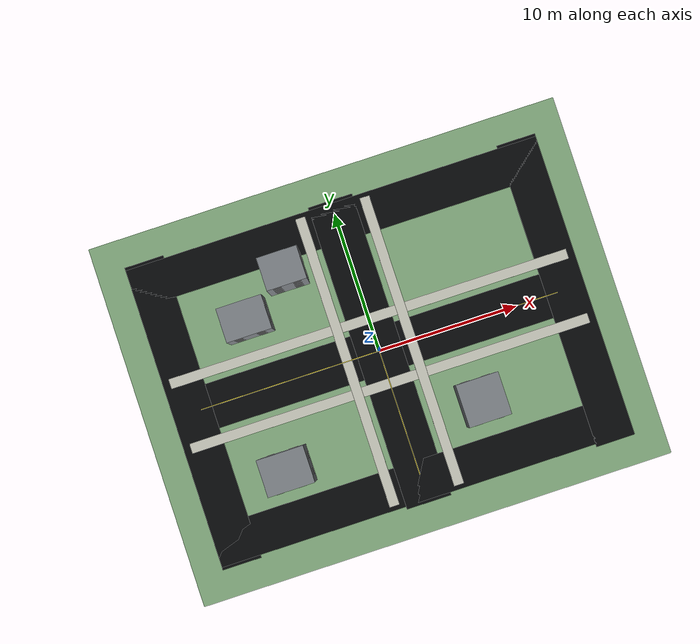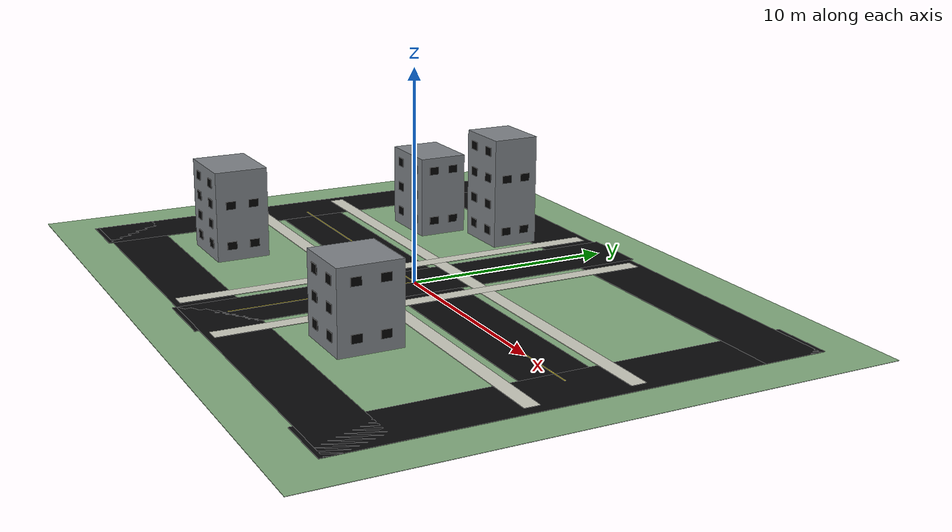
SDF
<sdf version="1.10">
 <world name="city_apm_rgbd">
  <physics name="apm_1ms_physics" type="ignored">
   <max_step_size>0.001</max_step_size>
   <real_time_factor>1.0</real_time_factor>
  </physics>
  <plugin filename="gz-sim-physics-system" name="gz::sim::systems::Physics"/>
  <plugin filename="gz-sim-sensors-system" name="gz::sim::systems::Sensors">
   <render_engine>ogre2</render_engine>
  </plugin>
  <plugin filename="gz-sim-user-commands-system" name="gz::sim::systems::UserCommands"/>
  <plugin filename="gz-sim-scene-broadcaster-system" name="gz::sim::systems::SceneBroadcaster"/>
  <plugin filename="gz-sim-imu-system" name="gz::sim::systems::Imu"/>
  <plugin filename="gz-sim-navsat-system" name="gz::sim::systems::NavSat"/>
  <scene>
   <ambient>0.98 0.98 0.96 1</ambient>
   <background>0.82 0.90 1.0 1</background>
   <shadows>false</shadows>
  </scene>
  <spherical_coordinates>
   <latitude_deg>-35.363262</latitude_deg>
   <longitude_deg>149.165237</longitude_deg>
   <elevation>584</elevation>
   <heading_deg>0</heading_deg>
   <surface_model>EARTH_WGS84</surface_model>
  </spherical_coordinates>
  <light name="sun" type="directional">
   <pose>0 0 24 0.45 0.25 0</pose>
   <diffuse>1.0 1.0 0.95 1</diffuse>
   <specular>0.55 0.55 0.50 1</specular>
   <direction>-0.25 0.18 -0.95</direction>
  </light>
  <model name="visual_ground">
   <static>true</static>
   <link name="link">
    <collision name="ground_collision">
     <pose>0 0 -0.01 0 0 0</pose>
     <geometry><box><size>34 26 0.02</size></box></geometry>
     <surface><friction><ode><mu>0.4</mu><mu2>0.4</mu2></ode></friction></surface>
    </collision>
    <visual name="ground_visual">
     <geometry><box><size>34 26 0.02</size></box></geometry>
     <pose>0 0 -0.01 0 0 0</pose>
     <material><diffuse>0.52 0.68 0.50 1</diffuse></material>
    </visual>
   </link>
  </model>
  <model name="visual_city_block">
   <static>true</static>
   <link name="link">
    <visual name="road_main">
     <pose>0 0 0.005 0 0 0</pose>
     <geometry><box><size>30 3.2 0.03</size></box></geometry>
     <material><diffuse>0.035 0.038 0.042 1</diffuse></material>
    </visual>
    <visual name="road_cross">
     <pose>0 0 0.006 0 0 0</pose>
     <geometry><box><size>3.2 22 0.035</size></box></geometry>
     <material><diffuse>0.035 0.038 0.042 1</diffuse></material>
    </visual>
    <visual name="road_outer_top">
     <pose>0 9.4 0.006 0 0 0</pose>
     <geometry><box><size>30 2.8 0.035</size></box></geometry>
     <material><diffuse>0.035 0.038 0.042 1</diffuse></material>
    </visual>
    <visual name="road_outer_bottom">
     <pose>0 -9.4 0.006 0 0 0</pose>
     <geometry><box><size>30 2.8 0.035</size></box></geometry>
     <material><diffuse>0.035 0.038 0.042 1</diffuse></material>
    </visual>
    <visual name="road_outer_left">
     <pose>-13.6 0 0.006 0 0 0</pose>
     <geometry><box><size>2.8 22 0.035</size></box></geometry>
     <material><diffuse>0.035 0.038 0.042 1</diffuse></material>
    </visual>
    <visual name="road_outer_right">
     <pose>13.6 0 0.006 0 0 0</pose>
     <geometry><box><size>2.8 22 0.035</size></box></geometry>
     <material><diffuse>0.035 0.038 0.042 1</diffuse></material>
    </visual>
    <visual name="lane_main">
     <pose>0 0 0.04 0 0 0</pose>
     <geometry><box><size>26 0.055 0.01</size></box></geometry>
     <material><diffuse>0.92 0.84 0.2 1</diffuse></material>
    </visual>
    <visual name="lane_cross">
     <pose>0 0 0.041 0 0 0</pose>
     <geometry><box><size>0.055 18 0.01</size></box></geometry>
     <material><diffuse>0.92 0.84 0.2 1</diffuse></material>
    </visual>
    <visual name="sidewalk_north">
     <pose>0 2.35 0.02 0 0 0</pose>
     <geometry><box><size>29 0.70 0.025</size></box></geometry>
     <material><diffuse>0.80 0.80 0.75 1</diffuse></material>
    </visual>
    <visual name="sidewalk_south">
     <pose>0 -2.35 0.02 0 0 0</pose>
     <geometry><box><size>29 0.70 0.025</size></box></geometry>
     <material><diffuse>0.80 0.80 0.75 1</diffuse></material>
    </visual>
    <visual name="sidewalk_east">
     <pose>2.35 0 0.021 0 0 0</pose>
     <geometry><box><size>0.70 21 0.025</size></box></geometry>
     <material><diffuse>0.80 0.80 0.75 1</diffuse></material>
    </visual>
    <visual name="sidewalk_west">
     <pose>-2.35 0 0.021 0 0 0</pose>
     <geometry><box><size>0.70 21 0.025</size></box></geometry>
     <material><diffuse>0.80 0.80 0.75 1</diffuse></material>
    </visual>
    <visual name="building_a">
     <pose>-8 4.8 2.0 0 0 0</pose>
     <geometry><box><size>3.2 2.4 4.0</size></box></geometry>
     <material>
      <ambient>0.62 0.64 0.66 1</ambient>
      <diffuse>0.50 0.52 0.54 1</diffuse>
      <specular>0.10 0.10 0.10 1</specular>
     </material>
    </visual>
    <visual name="building_b">
     <pose>-4.5 7.1 2.7 0 0 0</pose>
     <geometry><box><size>2.8 2.3 5.4</size></box></geometry>
     <material>
      <ambient>0.62 0.64 0.66 1</ambient>
      <diffuse>0.50 0.52 0.54 1</diffuse>
      <specular>0.10 0.10 0.10 1</specular>
     </material>
    </visual>
    <visual name="building_d">
     <pose>5.6 -5.4 1.9 0 0 0</pose>
     <geometry><box><size>3.0 3.0 3.8</size></box></geometry>
     <material>
      <ambient>0.62 0.64 0.66 1</ambient>
      <diffuse>0.50 0.52 0.54 1</diffuse>
      <specular>0.10 0.10 0.10 1</specular>
     </material>
    </visual>
    <visual name="building_e">
     <pose>-8.5 -5.8 2.2 0 0 0</pose>
     <geometry><box><size>3.3 2.6 4.4</size></box></geometry>
     <material>
      <ambient>0.62 0.64 0.66 1</ambient>
      <diffuse>0.50 0.52 0.54 1</diffuse>
      <specular>0.10 0.10 0.10 1</specular>
     </material>
    </visual>
    <visual name="window_building_a_front_0_0">
     <pose>-8.8 3.588 0.75 0 0 0</pose>
     <geometry><box><size>0.55 0.035 0.42</size></box></geometry>
     <material>
      <ambient>0.01 0.01 0.01 1</ambient>
      <diffuse>0.01 0.01 0.01 1</diffuse>
      <specular>0.05 0.05 0.05 1</specular>
     </material>
    </visual>
    <visual name="window_building_a_back_0_0">
     <pose>-8.8 6.012 0.75 0 0 0</pose>
     <geometry><box><size>0.55 0.035 0.42</size></box></geometry>
     <material>
      <ambient>0.01 0.01 0.01 1</ambient>
      <diffuse>0.01 0.01 0.01 1</diffuse>
      <specular>0.05 0.05 0.05 1</specular>
     </material>
    </visual>
    <visual name="window_building_a_front_0_1">
     <pose>-7.2 3.588 0.75 0 0 0</pose>
     <geometry><box><size>0.55 0.035 0.42</size></box></geometry>
     <material>
      <ambient>0.01 0.01 0.01 1</ambient>
      <diffuse>0.01 0.01 0.01 1</diffuse>
      <specular>0.05 0.05 0.05 1</specular>
     </material>
    </visual>
    <visual name="window_building_a_back_0_1">
     <pose>-7.2 6.012 0.75 0 0 0</pose>
     <geometry><box><size>0.55 0.035 0.42</size></box></geometry>
     <material>
      <ambient>0.01 0.01 0.01 1</ambient>
      <diffuse>0.01 0.01 0.01 1</diffuse>
      <specular>0.05 0.05 0.05 1</specular>
     </material>
    </visual>
    <visual name="window_building_a_front_1_0">
     <pose>-8.8 3.588 2.05 0 0 0</pose>
     <geometry><box><size>0.55 0.035 0.42</size></box></geometry>
     <material>
      <ambient>0.01 0.01 0.01 1</ambient>
      <diffuse>0.01 0.01 0.01 1</diffuse>
      <specular>0.05 0.05 0.05 1</specular>
     </material>
    </visual>
    <visual name="window_building_a_back_1_0">
     <pose>-8.8 6.012 2.05 0 0 0</pose>
     <geometry><box><size>0.55 0.035 0.42</size></box></geometry>
     <material>
      <ambient>0.01 0.01 0.01 1</ambient>
      <diffuse>0.01 0.01 0.01 1</diffuse>
      <specular>0.05 0.05 0.05 1</specular>
     </material>
    </visual>
    <visual name="window_building_a_front_1_1">
     <pose>-7.2 3.588 2.05 0 0 0</pose>
     <geometry><box><size>0.55 0.035 0.42</size></box></geometry>
     <material>
      <ambient>0.01 0.01 0.01 1</ambient>
      <diffuse>0.01 0.01 0.01 1</diffuse>
      <specular>0.05 0.05 0.05 1</specular>
     </material>
    </visual>
    <visual name="window_building_a_back_1_1">
     <pose>-7.2 6.012 2.05 0 0 0</pose>
     <geometry><box><size>0.55 0.035 0.42</size></box></geometry>
     <material>
      <ambient>0.01 0.01 0.01 1</ambient>
      <diffuse>0.01 0.01 0.01 1</diffuse>
      <specular>0.05 0.05 0.05 1</specular>
     </material>
    </visual>
    <visual name="window_building_a_front_2_0">
     <pose>-8.8 3.588 3.35 0 0 0</pose>
     <geometry><box><size>0.55 0.035 0.42</size></box></geometry>
     <material>
      <ambient>0.01 0.01 0.01 1</ambient>
      <diffuse>0.01 0.01 0.01 1</diffuse>
      <specular>0.05 0.05 0.05 1</specular>
     </material>
    </visual>
    <visual name="window_building_a_back_2_0">
     <pose>-8.8 6.012 3.35 0 0 0</pose>
     <geometry><box><size>0.55 0.035 0.42</size></box></geometry>
     <material>
      <ambient>0.01 0.01 0.01 1</ambient>
      <diffuse>0.01 0.01 0.01 1</diffuse>
      <specular>0.05 0.05 0.05 1</specular>
     </material>
    </visual>
    <visual name="window_building_a_front_2_1">
     <pose>-7.2 3.588 3.35 0 0 0</pose>
     <geometry><box><size>0.55 0.035 0.42</size></box></geometry>
     <material>
      <ambient>0.01 0.01 0.01 1</ambient>
      <diffuse>0.01 0.01 0.01 1</diffuse>
      <specular>0.05 0.05 0.05 1</specular>
     </material>
    </visual>
    <visual name="window_building_a_back_2_1">
     <pose>-7.2 6.012 3.35 0 0 0</pose>
     <geometry><box><size>0.55 0.035 0.42</size></box></geometry>
     <material>
      <ambient>0.01 0.01 0.01 1</ambient>
      <diffuse>0.01 0.01 0.01 1</diffuse>
      <specular>0.05 0.05 0.05 1</specular>
     </material>
    </visual>
    <visual name="window_building_a_side_0_0">
     <pose>-6.388 4.272 0.75 0 0 0</pose>
     <geometry><box><size>0.035 0.48 0.38</size></box></geometry>
     <material>
      <ambient>0.01 0.01 0.01 1</ambient>
      <diffuse>0.01 0.01 0.01 1</diffuse>
      <specular>0.05 0.05 0.05 1</specular>
     </material>
    </visual>
    <visual name="window_building_a_side_0_1">
     <pose>-6.388 5.328 0.75 0 0 0</pose>
     <geometry><box><size>0.035 0.48 0.38</size></box></geometry>
     <material>
      <ambient>0.01 0.01 0.01 1</ambient>
      <diffuse>0.01 0.01 0.01 1</diffuse>
      <specular>0.05 0.05 0.05 1</specular>
     </material>
    </visual>
    <visual name="window_building_a_side_1_0">
     <pose>-6.388 4.272 3.35 0 0 0</pose>
     <geometry><box><size>0.035 0.48 0.38</size></box></geometry>
     <material>
      <ambient>0.01 0.01 0.01 1</ambient>
      <diffuse>0.01 0.01 0.01 1</diffuse>
      <specular>0.05 0.05 0.05 1</specular>
     </material>
    </visual>
    <visual name="window_building_a_side_1_1">
     <pose>-6.388 5.328 3.35 0 0 0</pose>
     <geometry><box><size>0.035 0.48 0.38</size></box></geometry>
     <material>
      <ambient>0.01 0.01 0.01 1</ambient>
      <diffuse>0.01 0.01 0.01 1</diffuse>
      <specular>0.05 0.05 0.05 1</specular>
     </material>
    </visual>
    <visual name="window_building_b_front_0_0">
     <pose>-5.2 5.938 0.75 0 0 0</pose>
     <geometry><box><size>0.55 0.035 0.42</size></box></geometry>
     <material>
      <ambient>0.01 0.01 0.01 1</ambient>
      <diffuse>0.01 0.01 0.01 1</diffuse>
      <specular>0.05 0.05 0.05 1</specular>
     </material>
    </visual>
    <visual name="window_building_b_back_0_0">
     <pose>-5.2 8.262 0.75 0 0 0</pose>
     <geometry><box><size>0.55 0.035 0.42</size></box></geometry>
     <material>
      <ambient>0.01 0.01 0.01 1</ambient>
      <diffuse>0.01 0.01 0.01 1</diffuse>
      <specular>0.05 0.05 0.05 1</specular>
     </material>
    </visual>
    <visual name="window_building_b_front_0_1">
     <pose>-3.8 5.938 0.75 0 0 0</pose>
     <geometry><box><size>0.55 0.035 0.42</size></box></geometry>
     <material>
      <ambient>0.01 0.01 0.01 1</ambient>
      <diffuse>0.01 0.01 0.01 1</diffuse>
      <specular>0.05 0.05 0.05 1</specular>
     </material>
    </visual>
    <visual name="window_building_b_back_0_1">
     <pose>-3.8 8.262 0.75 0 0 0</pose>
     <geometry><box><size>0.55 0.035 0.42</size></box></geometry>
     <material>
      <ambient>0.01 0.01 0.01 1</ambient>
      <diffuse>0.01 0.01 0.01 1</diffuse>
      <specular>0.05 0.05 0.05 1</specular>
     </material>
    </visual>
    <visual name="window_building_b_front_1_0">
     <pose>-5.2 5.938 2.083 0 0 0</pose>
     <geometry><box><size>0.55 0.035 0.42</size></box></geometry>
     <material>
      <ambient>0.01 0.01 0.01 1</ambient>
      <diffuse>0.01 0.01 0.01 1</diffuse>
      <specular>0.05 0.05 0.05 1</specular>
     </material>
    </visual>
    <visual name="window_building_b_back_1_0">
     <pose>-5.2 8.262 2.083 0 0 0</pose>
     <geometry><box><size>0.55 0.035 0.42</size></box></geometry>
     <material>
      <ambient>0.01 0.01 0.01 1</ambient>
      <diffuse>0.01 0.01 0.01 1</diffuse>
      <specular>0.05 0.05 0.05 1</specular>
     </material>
    </visual>
    <visual name="window_building_b_front_1_1">
     <pose>-3.8 5.938 2.083 0 0 0</pose>
     <geometry><box><size>0.55 0.035 0.42</size></box></geometry>
     <material>
      <ambient>0.01 0.01 0.01 1</ambient>
      <diffuse>0.01 0.01 0.01 1</diffuse>
      <specular>0.05 0.05 0.05 1</specular>
     </material>
    </visual>
    <visual name="window_building_b_back_1_1">
     <pose>-3.8 8.262 2.083 0 0 0</pose>
     <geometry><box><size>0.55 0.035 0.42</size></box></geometry>
     <material>
      <ambient>0.01 0.01 0.01 1</ambient>
      <diffuse>0.01 0.01 0.01 1</diffuse>
      <specular>0.05 0.05 0.05 1</specular>
     </material>
    </visual>
    <visual name="window_building_b_front_2_0">
     <pose>-5.2 5.938 3.417 0 0 0</pose>
     <geometry><box><size>0.55 0.035 0.42</size></box></geometry>
     <material>
      <ambient>0.01 0.01 0.01 1</ambient>
      <diffuse>0.01 0.01 0.01 1</diffuse>
      <specular>0.05 0.05 0.05 1</specular>
     </material>
    </visual>
    <visual name="window_building_b_back_2_0">
     <pose>-5.2 8.262 3.417 0 0 0</pose>
     <geometry><box><size>0.55 0.035 0.42</size></box></geometry>
     <material>
      <ambient>0.01 0.01 0.01 1</ambient>
      <diffuse>0.01 0.01 0.01 1</diffuse>
      <specular>0.05 0.05 0.05 1</specular>
     </material>
    </visual>
    <visual name="window_building_b_front_2_1">
     <pose>-3.8 5.938 3.417 0 0 0</pose>
     <geometry><box><size>0.55 0.035 0.42</size></box></geometry>
     <material>
      <ambient>0.01 0.01 0.01 1</ambient>
      <diffuse>0.01 0.01 0.01 1</diffuse>
      <specular>0.05 0.05 0.05 1</specular>
     </material>
    </visual>
    <visual name="window_building_b_back_2_1">
     <pose>-3.8 8.262 3.417 0 0 0</pose>
     <geometry><box><size>0.55 0.035 0.42</size></box></geometry>
     <material>
      <ambient>0.01 0.01 0.01 1</ambient>
      <diffuse>0.01 0.01 0.01 1</diffuse>
      <specular>0.05 0.05 0.05 1</specular>
     </material>
    </visual>
    <visual name="window_building_b_front_3_0">
     <pose>-5.2 5.938 4.75 0 0 0</pose>
     <geometry><box><size>0.55 0.035 0.42</size></box></geometry>
     <material>
      <ambient>0.01 0.01 0.01 1</ambient>
      <diffuse>0.01 0.01 0.01 1</diffuse>
      <specular>0.05 0.05 0.05 1</specular>
     </material>
    </visual>
    <visual name="window_building_b_back_3_0">
     <pose>-5.2 8.262 4.75 0 0 0</pose>
     <geometry><box><size>0.55 0.035 0.42</size></box></geometry>
     <material>
      <ambient>0.01 0.01 0.01 1</ambient>
      <diffuse>0.01 0.01 0.01 1</diffuse>
      <specular>0.05 0.05 0.05 1</specular>
     </material>
    </visual>
    <visual name="window_building_b_front_3_1">
     <pose>-3.8 5.938 4.75 0 0 0</pose>
     <geometry><box><size>0.55 0.035 0.42</size></box></geometry>
     <material>
      <ambient>0.01 0.01 0.01 1</ambient>
      <diffuse>0.01 0.01 0.01 1</diffuse>
      <specular>0.05 0.05 0.05 1</specular>
     </material>
    </visual>
    <visual name="window_building_b_back_3_1">
     <pose>-3.8 8.262 4.75 0 0 0</pose>
     <geometry><box><size>0.55 0.035 0.42</size></box></geometry>
     <material>
      <ambient>0.01 0.01 0.01 1</ambient>
      <diffuse>0.01 0.01 0.01 1</diffuse>
      <specular>0.05 0.05 0.05 1</specular>
     </material>
    </visual>
    <visual name="window_building_b_side_0_0">
     <pose>-3.088 6.594 0.75 0 0 0</pose>
     <geometry><box><size>0.035 0.48 0.38</size></box></geometry>
     <material>
      <ambient>0.01 0.01 0.01 1</ambient>
      <diffuse>0.01 0.01 0.01 1</diffuse>
      <specular>0.05 0.05 0.05 1</specular>
     </material>
    </visual>
    <visual name="window_building_b_side_0_1">
     <pose>-3.088 7.606 0.75 0 0 0</pose>
     <geometry><box><size>0.035 0.48 0.38</size></box></geometry>
     <material>
      <ambient>0.01 0.01 0.01 1</ambient>
      <diffuse>0.01 0.01 0.01 1</diffuse>
      <specular>0.05 0.05 0.05 1</specular>
     </material>
    </visual>
    <visual name="window_building_b_side_1_0">
     <pose>-3.088 6.594 3.417 0 0 0</pose>
     <geometry><box><size>0.035 0.48 0.38</size></box></geometry>
     <material>
      <ambient>0.01 0.01 0.01 1</ambient>
      <diffuse>0.01 0.01 0.01 1</diffuse>
      <specular>0.05 0.05 0.05 1</specular>
     </material>
    </visual>
    <visual name="window_building_b_side_1_1">
     <pose>-3.088 7.606 3.417 0 0 0</pose>
     <geometry><box><size>0.035 0.48 0.38</size></box></geometry>
     <material>
      <ambient>0.01 0.01 0.01 1</ambient>
      <diffuse>0.01 0.01 0.01 1</diffuse>
      <specular>0.05 0.05 0.05 1</specular>
     </material>
    </visual>
    <visual name="window_building_d_front_0_0">
     <pose>4.85 -6.912 0.75 0 0 0</pose>
     <geometry><box><size>0.55 0.035 0.42</size></box></geometry>
     <material>
      <ambient>0.01 0.01 0.01 1</ambient>
      <diffuse>0.01 0.01 0.01 1</diffuse>
      <specular>0.05 0.05 0.05 1</specular>
     </material>
    </visual>
    <visual name="window_building_d_back_0_0">
     <pose>4.85 -3.888 0.75 0 0 0</pose>
     <geometry><box><size>0.55 0.035 0.42</size></box></geometry>
     <material>
      <ambient>0.01 0.01 0.01 1</ambient>
      <diffuse>0.01 0.01 0.01 1</diffuse>
      <specular>0.05 0.05 0.05 1</specular>
     </material>
    </visual>
    <visual name="window_building_d_front_0_1">
     <pose>6.35 -6.912 0.75 0 0 0</pose>
     <geometry><box><size>0.55 0.035 0.42</size></box></geometry>
     <material>
      <ambient>0.01 0.01 0.01 1</ambient>
      <diffuse>0.01 0.01 0.01 1</diffuse>
      <specular>0.05 0.05 0.05 1</specular>
     </material>
    </visual>
    <visual name="window_building_d_back_0_1">
     <pose>6.35 -3.888 0.75 0 0 0</pose>
     <geometry><box><size>0.55 0.035 0.42</size></box></geometry>
     <material>
      <ambient>0.01 0.01 0.01 1</ambient>
      <diffuse>0.01 0.01 0.01 1</diffuse>
      <specular>0.05 0.05 0.05 1</specular>
     </material>
    </visual>
    <visual name="window_building_d_front_1_0">
     <pose>4.85 -6.912 1.95 0 0 0</pose>
     <geometry><box><size>0.55 0.035 0.42</size></box></geometry>
     <material>
      <ambient>0.01 0.01 0.01 1</ambient>
      <diffuse>0.01 0.01 0.01 1</diffuse>
      <specular>0.05 0.05 0.05 1</specular>
     </material>
    </visual>
    <visual name="window_building_d_back_1_0">
     <pose>4.85 -3.888 1.95 0 0 0</pose>
     <geometry><box><size>0.55 0.035 0.42</size></box></geometry>
     <material>
      <ambient>0.01 0.01 0.01 1</ambient>
      <diffuse>0.01 0.01 0.01 1</diffuse>
      <specular>0.05 0.05 0.05 1</specular>
     </material>
    </visual>
    <visual name="window_building_d_front_1_1">
     <pose>6.35 -6.912 1.95 0 0 0</pose>
     <geometry><box><size>0.55 0.035 0.42</size></box></geometry>
     <material>
      <ambient>0.01 0.01 0.01 1</ambient>
      <diffuse>0.01 0.01 0.01 1</diffuse>
      <specular>0.05 0.05 0.05 1</specular>
     </material>
    </visual>
    <visual name="window_building_d_back_1_1">
     <pose>6.35 -3.888 1.95 0 0 0</pose>
     <geometry><box><size>0.55 0.035 0.42</size></box></geometry>
     <material>
      <ambient>0.01 0.01 0.01 1</ambient>
      <diffuse>0.01 0.01 0.01 1</diffuse>
      <specular>0.05 0.05 0.05 1</specular>
     </material>
    </visual>
    <visual name="window_building_d_front_2_0">
     <pose>4.85 -6.912 3.15 0 0 0</pose>
     <geometry><box><size>0.55 0.035 0.42</size></box></geometry>
     <material>
      <ambient>0.01 0.01 0.01 1</ambient>
      <diffuse>0.01 0.01 0.01 1</diffuse>
      <specular>0.05 0.05 0.05 1</specular>
     </material>
    </visual>
    <visual name="window_building_d_back_2_0">
     <pose>4.85 -3.888 3.15 0 0 0</pose>
     <geometry><box><size>0.55 0.035 0.42</size></box></geometry>
     <material>
      <ambient>0.01 0.01 0.01 1</ambient>
      <diffuse>0.01 0.01 0.01 1</diffuse>
      <specular>0.05 0.05 0.05 1</specular>
     </material>
    </visual>
    <visual name="window_building_d_front_2_1">
     <pose>6.35 -6.912 3.15 0 0 0</pose>
     <geometry><box><size>0.55 0.035 0.42</size></box></geometry>
     <material>
      <ambient>0.01 0.01 0.01 1</ambient>
      <diffuse>0.01 0.01 0.01 1</diffuse>
      <specular>0.05 0.05 0.05 1</specular>
     </material>
    </visual>
    <visual name="window_building_d_back_2_1">
     <pose>6.35 -3.888 3.15 0 0 0</pose>
     <geometry><box><size>0.55 0.035 0.42</size></box></geometry>
     <material>
      <ambient>0.01 0.01 0.01 1</ambient>
      <diffuse>0.01 0.01 0.01 1</diffuse>
      <specular>0.05 0.05 0.05 1</specular>
     </material>
    </visual>
    <visual name="window_building_d_side_0_0">
     <pose>7.112 -6.06 0.75 0 0 0</pose>
     <geometry><box><size>0.035 0.48 0.38</size></box></geometry>
     <material>
      <ambient>0.01 0.01 0.01 1</ambient>
      <diffuse>0.01 0.01 0.01 1</diffuse>
      <specular>0.05 0.05 0.05 1</specular>
     </material>
    </visual>
    <visual name="window_building_d_side_0_1">
     <pose>7.112 -4.74 0.75 0 0 0</pose>
     <geometry><box><size>0.035 0.48 0.38</size></box></geometry>
     <material>
      <ambient>0.01 0.01 0.01 1</ambient>
      <diffuse>0.01 0.01 0.01 1</diffuse>
      <specular>0.05 0.05 0.05 1</specular>
     </material>
    </visual>
    <visual name="window_building_d_side_1_0">
     <pose>7.112 -6.06 3.15 0 0 0</pose>
     <geometry><box><size>0.035 0.48 0.38</size></box></geometry>
     <material>
      <ambient>0.01 0.01 0.01 1</ambient>
      <diffuse>0.01 0.01 0.01 1</diffuse>
      <specular>0.05 0.05 0.05 1</specular>
     </material>
    </visual>
    <visual name="window_building_d_side_1_1">
     <pose>7.112 -4.74 3.15 0 0 0</pose>
     <geometry><box><size>0.035 0.48 0.38</size></box></geometry>
     <material>
      <ambient>0.01 0.01 0.01 1</ambient>
      <diffuse>0.01 0.01 0.01 1</diffuse>
      <specular>0.05 0.05 0.05 1</specular>
     </material>
    </visual>
    <visual name="window_building_e_front_0_0">
     <pose>-9.325 -7.112 0.75 0 0 0</pose>
     <geometry><box><size>0.55 0.035 0.42</size></box></geometry>
     <material>
      <ambient>0.01 0.01 0.01 1</ambient>
      <diffuse>0.01 0.01 0.01 1</diffuse>
      <specular>0.05 0.05 0.05 1</specular>
     </material>
    </visual>
    <visual name="window_building_e_back_0_0">
     <pose>-9.325 -4.488 0.75 0 0 0</pose>
     <geometry><box><size>0.55 0.035 0.42</size></box></geometry>
     <material>
      <ambient>0.01 0.01 0.01 1</ambient>
      <diffuse>0.01 0.01 0.01 1</diffuse>
      <specular>0.05 0.05 0.05 1</specular>
     </material>
    </visual>
    <visual name="window_building_e_front_0_1">
     <pose>-7.675 -7.112 0.75 0 0 0</pose>
     <geometry><box><size>0.55 0.035 0.42</size></box></geometry>
     <material>
      <ambient>0.01 0.01 0.01 1</ambient>
      <diffuse>0.01 0.01 0.01 1</diffuse>
      <specular>0.05 0.05 0.05 1</specular>
     </material>
    </visual>
    <visual name="window_building_e_back_0_1">
     <pose>-7.675 -4.488 0.75 0 0 0</pose>
     <geometry><box><size>0.55 0.035 0.42</size></box></geometry>
     <material>
      <ambient>0.01 0.01 0.01 1</ambient>
      <diffuse>0.01 0.01 0.01 1</diffuse>
      <specular>0.05 0.05 0.05 1</specular>
     </material>
    </visual>
    <visual name="window_building_e_front_1_0">
     <pose>-9.325 -7.112 1.75 0 0 0</pose>
     <geometry><box><size>0.55 0.035 0.42</size></box></geometry>
     <material>
      <ambient>0.01 0.01 0.01 1</ambient>
      <diffuse>0.01 0.01 0.01 1</diffuse>
      <specular>0.05 0.05 0.05 1</specular>
     </material>
    </visual>
    <visual name="window_building_e_back_1_0">
     <pose>-9.325 -4.488 1.75 0 0 0</pose>
     <geometry><box><size>0.55 0.035 0.42</size></box></geometry>
     <material>
      <ambient>0.01 0.01 0.01 1</ambient>
      <diffuse>0.01 0.01 0.01 1</diffuse>
      <specular>0.05 0.05 0.05 1</specular>
     </material>
    </visual>
    <visual name="window_building_e_front_1_1">
     <pose>-7.675 -7.112 1.75 0 0 0</pose>
     <geometry><box><size>0.55 0.035 0.42</size></box></geometry>
     <material>
      <ambient>0.01 0.01 0.01 1</ambient>
      <diffuse>0.01 0.01 0.01 1</diffuse>
      <specular>0.05 0.05 0.05 1</specular>
     </material>
    </visual>
    <visual name="window_building_e_back_1_1">
     <pose>-7.675 -4.488 1.75 0 0 0</pose>
     <geometry><box><size>0.55 0.035 0.42</size></box></geometry>
     <material>
      <ambient>0.01 0.01 0.01 1</ambient>
      <diffuse>0.01 0.01 0.01 1</diffuse>
      <specular>0.05 0.05 0.05 1</specular>
     </material>
    </visual>
    <visual name="window_building_e_front_2_0">
     <pose>-9.325 -7.112 2.75 0 0 0</pose>
     <geometry><box><size>0.55 0.035 0.42</size></box></geometry>
     <material>
      <ambient>0.01 0.01 0.01 1</ambient>
      <diffuse>0.01 0.01 0.01 1</diffuse>
      <specular>0.05 0.05 0.05 1</specular>
     </material>
    </visual>
    <visual name="window_building_e_back_2_0">
     <pose>-9.325 -4.488 2.75 0 0 0</pose>
     <geometry><box><size>0.55 0.035 0.42</size></box></geometry>
     <material>
      <ambient>0.01 0.01 0.01 1</ambient>
      <diffuse>0.01 0.01 0.01 1</diffuse>
      <specular>0.05 0.05 0.05 1</specular>
     </material>
    </visual>
    <visual name="window_building_e_front_2_1">
     <pose>-7.675 -7.112 2.75 0 0 0</pose>
     <geometry><box><size>0.55 0.035 0.42</size></box></geometry>
     <material>
      <ambient>0.01 0.01 0.01 1</ambient>
      <diffuse>0.01 0.01 0.01 1</diffuse>
      <specular>0.05 0.05 0.05 1</specular>
     </material>
    </visual>
    <visual name="window_building_e_back_2_1">
     <pose>-7.675 -4.488 2.75 0 0 0</pose>
     <geometry><box><size>0.55 0.035 0.42</size></box></geometry>
     <material>
      <ambient>0.01 0.01 0.01 1</ambient>
      <diffuse>0.01 0.01 0.01 1</diffuse>
      <specular>0.05 0.05 0.05 1</specular>
     </material>
    </visual>
    <visual name="window_building_e_front_3_0">
     <pose>-9.325 -7.112 3.75 0 0 0</pose>
     <geometry><box><size>0.55 0.035 0.42</size></box></geometry>
     <material>
      <ambient>0.01 0.01 0.01 1</ambient>
      <diffuse>0.01 0.01 0.01 1</diffuse>
      <specular>0.05 0.05 0.05 1</specular>
     </material>
    </visual>
    <visual name="window_building_e_back_3_0">
     <pose>-9.325 -4.488 3.75 0 0 0</pose>
     <geometry><box><size>0.55 0.035 0.42</size></box></geometry>
     <material>
      <ambient>0.01 0.01 0.01 1</ambient>
      <diffuse>0.01 0.01 0.01 1</diffuse>
      <specular>0.05 0.05 0.05 1</specular>
     </material>
    </visual>
    <visual name="window_building_e_front_3_1">
     <pose>-7.675 -7.112 3.75 0 0 0</pose>
     <geometry><box><size>0.55 0.035 0.42</size></box></geometry>
     <material>
      <ambient>0.01 0.01 0.01 1</ambient>
      <diffuse>0.01 0.01 0.01 1</diffuse>
      <specular>0.05 0.05 0.05 1</specular>
     </material>
    </visual>
    <visual name="window_building_e_back_3_1">
     <pose>-7.675 -4.488 3.75 0 0 0</pose>
     <geometry><box><size>0.55 0.035 0.42</size></box></geometry>
     <material>
      <ambient>0.01 0.01 0.01 1</ambient>
      <diffuse>0.01 0.01 0.01 1</diffuse>
      <specular>0.05 0.05 0.05 1</specular>
     </material>
    </visual>
    <visual name="window_building_e_side_0_0">
     <pose>-6.838 -6.372 0.75 0 0 0</pose>
     <geometry><box><size>0.035 0.48 0.38</size></box></geometry>
     <material>
      <ambient>0.01 0.01 0.01 1</ambient>
      <diffuse>0.01 0.01 0.01 1</diffuse>
      <specular>0.05 0.05 0.05 1</specular>
     </material>
    </visual>
    <visual name="window_building_e_side_0_1">
     <pose>-6.838 -5.228 0.75 0 0 0</pose>
     <geometry><box><size>0.035 0.48 0.38</size></box></geometry>
     <material>
      <ambient>0.01 0.01 0.01 1</ambient>
      <diffuse>0.01 0.01 0.01 1</diffuse>
      <specular>0.05 0.05 0.05 1</specular>
     </material>
    </visual>
    <visual name="window_building_e_side_1_0">
     <pose>-6.838 -6.372 2.75 0 0 0</pose>
     <geometry><box><size>0.035 0.48 0.38</size></box></geometry>
     <material>
      <ambient>0.01 0.01 0.01 1</ambient>
      <diffuse>0.01 0.01 0.01 1</diffuse>
      <specular>0.05 0.05 0.05 1</specular>
     </material>
    </visual>
    <visual name="window_building_e_side_1_1">
     <pose>-6.838 -5.228 2.75 0 0 0</pose>
     <geometry><box><size>0.035 0.48 0.38</size></box></geometry>
     <material>
      <ambient>0.01 0.01 0.01 1</ambient>
      <diffuse>0.01 0.01 0.01 1</diffuse>
      <specular>0.05 0.05 0.05 1</specular>
     </material>
    </visual>
   </link>
  </model>
  <include>
   <uri>model://d435i_downward_sensor_only</uri>
   <name>apm_iris_d435i</name>
   <pose>0.24 0 0.35 0 0 0</pose>
  </include>
 </world>
</sdf>

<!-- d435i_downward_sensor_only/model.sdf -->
<sdf version="1.10">
  <model name="d435i_downward_sensor_only">
    <static>false</static>
    <self_collide>false</self_collide>
    <link name="sensor_link">
      <gravity>false</gravity>
      <kinematic>true</kinematic>
      <sensor name="d435i_rgbd_down" type="rgbd_camera">
        <pose>0 0 0 0 1.57079632679 0</pose>
        <always_on>1</always_on>
        <update_rate>30</update_rate>
        <visualize>false</visualize>
        <topic>/camera/camera</topic>
        <camera>
          <horizontal_fov>1.21126</horizontal_fov>
          <image>
            <width>640</width>
            <height>480</height>
            <format>R8G8B8</format>
          </image>
          <clip>
            <near>0.105</near>
            <far>20.0</far>
          </clip>
        </camera>
      </sensor>
    </link>
  </model>
</sdf>
